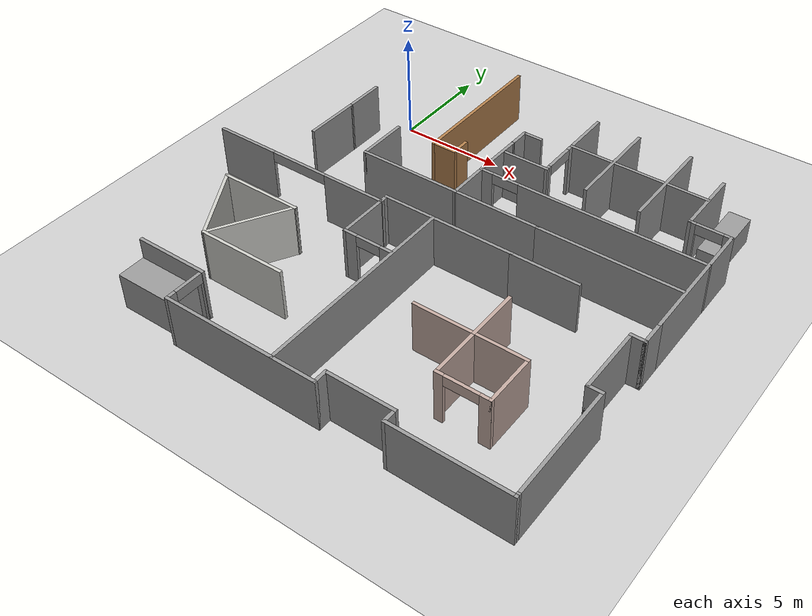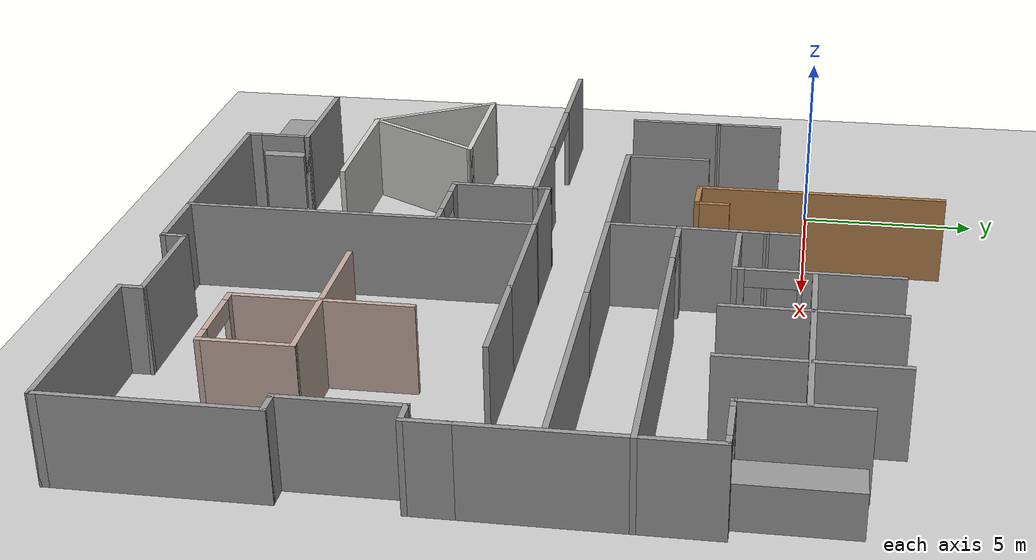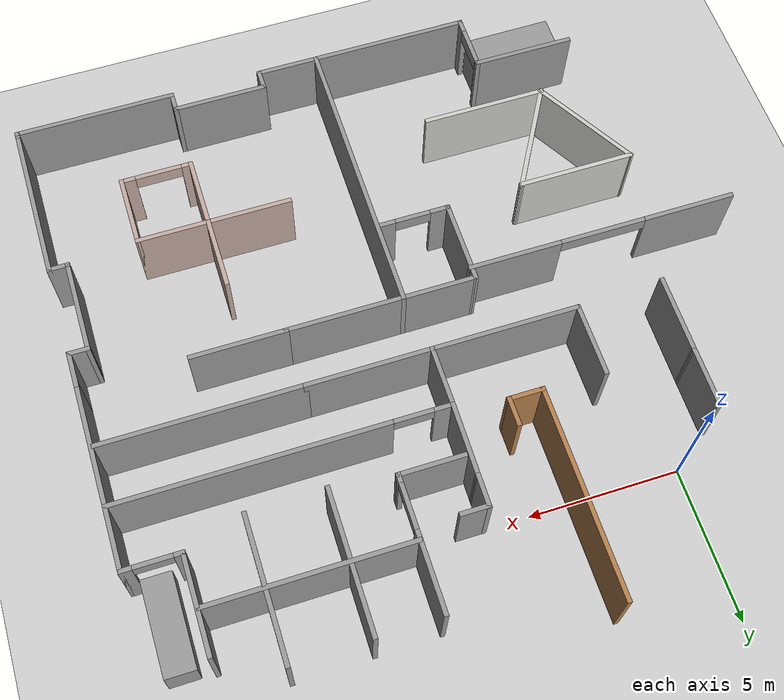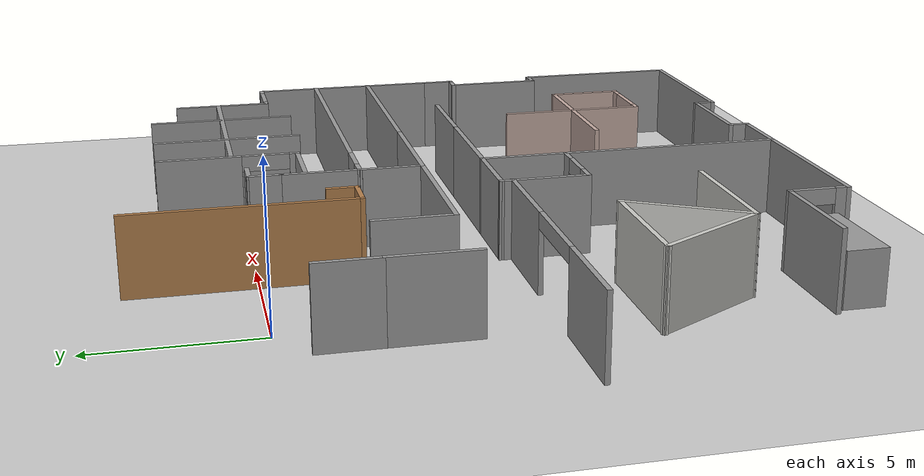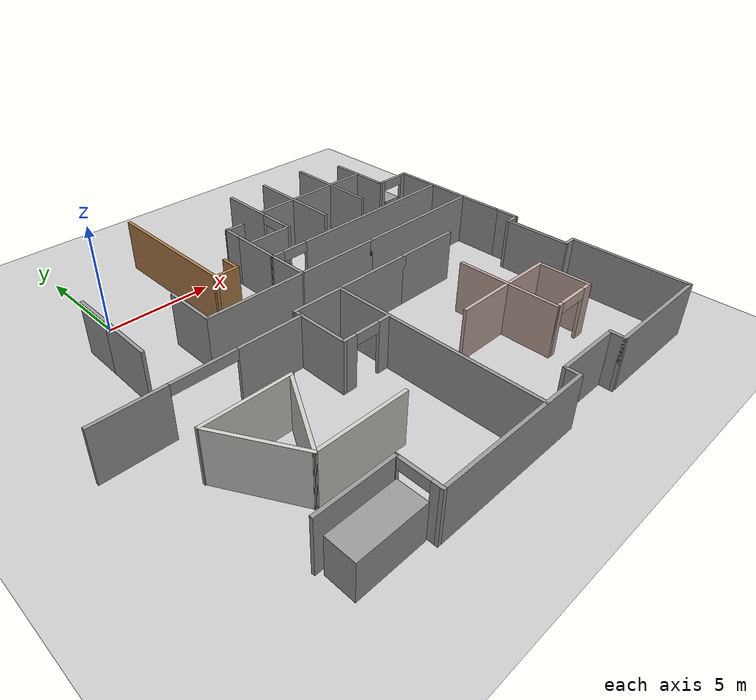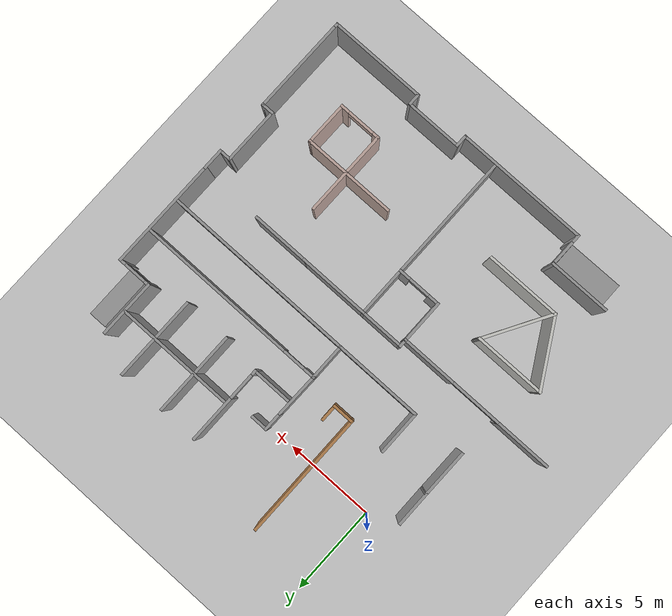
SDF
<sdf version="1.6">
 <world name="default">
  <model name="ground_plane">
   <static>1</static>
   <link name="link">
    <collision name="collision">
     <geometry><plane><normal>0 0 1</normal><size>100 100</size></plane></geometry>
     <surface><friction><ode><mu>100</mu><mu2>50</mu2></ode></friction></surface>
    </collision>
    <visual name="visual">
     <cast_shadows>0</cast_shadows>
     <geometry><plane><normal>0 0 1</normal><size>100 100</size></plane></geometry>
     <material>
      <script><uri>file://media/materials/scripts/gazebo.material</uri><name>Gazebo/Grey</name></script>
     </material>
    </visual>
   </link>
  </model>
  <model name="shopping01">
   <pose>-0.21266 0.4735 0 0 -0 0</pose>
   <link name="Wall_178">
    <collision name="Wall_178_Collision">
     <geometry><box><size>2.5 0.15 2.5</size></box></geometry>
     <pose>0 0 1.25 0 -0 0</pose>
    </collision>
    <visual name="Wall_178_Visual">
     <pose>0 0 1.25 0 -0 0</pose>
     <geometry><box><size>2.5 0.15 2.5</size></box></geometry>
     <material>
      <script><uri>file://media/materials/scripts/gazebo.material</uri><name>Gazebo/Grey</name></script>
      <ambient>1 1 1 1</ambient>
     </material>
     <meta><layer>0</layer></meta>
    </visual>
    <pose>1.83663 -4.63262 0 0 -0 -1.5708</pose>
   </link>
   <link name="Wall_179">
    <collision name="Wall_179_Collision">
     <geometry><box><size>5 0.15 2.5</size></box></geometry>
     <pose>0 0 1.25 0 -0 0</pose>
    </collision>
    <visual name="Wall_179_Visual">
     <pose>0 0 1.25 0 -0 0</pose>
     <geometry><box><size>5 0.15 2.5</size></box></geometry>
     <material>
      <script><uri>file://media/materials/scripts/gazebo.material</uri><name>Gazebo/Grey</name></script>
      <ambient>1 1 1 1</ambient>
     </material>
     <meta><layer>0</layer></meta>
    </visual>
    <pose>4.26163 -5.80762 0 0 -0 0</pose>
   </link>
   <link name="Wall_181">
    <collision name="Wall_181_Collision">
     <geometry><box><size>2.10458 0.15 2.5</size></box></geometry>
     <pose>0 0 1.25 0 -0 0</pose>
    </collision>
    <visual name="Wall_181_Visual">
     <pose>0 0 1.25 0 -0 0</pose>
     <geometry><box><size>2.10458 0.15 2.5</size></box></geometry>
     <material>
      <script><uri>file://media/materials/scripts/gazebo.material</uri><name>Gazebo/Grey</name></script>
      <ambient>1 1 1 1</ambient>
     </material>
     <meta><layer>0</layer></meta>
    </visual>
    <pose>6.68492 -4.83033 0 0 -0 1.57254</pose>
   </link>
   <link name="Wall_182">
    <pose>12.0817 -3.85304 0 0 -0 0</pose>
    <visual name="Wall_182_Visual_0">
     <pose>-5.1322 0 1.25 0 -0 0</pose>
     <geometry><box><size>0.682604 0.15 2.5</size></box></geometry>
     <material>
      <script><uri>file://media/materials/scripts/gazebo.material</uri><name>Gazebo/Grey</name></script>
      <ambient>1 1 1 1</ambient>
     </material>
     <meta><layer>0</layer></meta>
    </visual>
    <collision name="Wall_182_Collision_0">
     <geometry><box><size>0.682604 0.15 2.5</size></box></geometry>
     <pose>-5.1322 0 1.25 0 -0 0</pose>
    </collision>
    <visual name="Wall_182_Visual_1">
     <pose>0.990173 0 1.25 0 -0 0</pose>
     <geometry><box><size>8.96665 0.15 2.5</size></box></geometry>
     <material>
      <script><uri>file://media/materials/scripts/gazebo.material</uri><name>Gazebo/Grey</name></script>
      <ambient>1 1 1 1</ambient>
     </material>
     <meta><layer>0</layer></meta>
    </visual>
    <collision name="Wall_182_Collision_1">
     <geometry><box><size>8.96665 0.15 2.5</size></box></geometry>
     <pose>0.990173 0 1.25 0 -0 0</pose>
    </collision>
    <visual name="Wall_182_Visual_2">
     <pose>-4.14203 0 2.25 0 -0 0</pose>
     <geometry><box><size>1.29774 0.15 0.5</size></box></geometry>
     <material>
      <script><uri>file://media/materials/scripts/gazebo.material</uri><name>Gazebo/Grey</name></script>
      <ambient>1 1 1 1</ambient>
     </material>
     <meta><layer>0</layer></meta>
    </visual>
    <collision name="Wall_182_Collision_2">
     <geometry><box><size>1.29774 0.15 0.5</size></box></geometry>
     <pose>-4.14203 0 2.25 0 -0 0</pose>
    </collision>
   </link>
   <link name="Wall_186">
    <pose>8.96922 -0.029045 0 0 -0 -1.5708</pose>
    <visual name="Wall_186_Visual_0">
     <pose>-0.915651 0 1.25 0 -0 0</pose>
     <geometry><box><size>2.6687 0.15 2.5</size></box></geometry>
     <material>
      <script><uri>file://media/materials/scripts/gazebo.material</uri><name>Gazebo/Grey</name></script>
      <ambient>1 1 1 1</ambient>
     </material>
     <meta><layer>0</layer></meta>
    </visual>
    <collision name="Wall_186_Collision_0">
     <geometry><box><size>2.6687 0.15 2.5</size></box></geometry>
     <pose>-0.915651 0 1.25 0 -0 0</pose>
    </collision>
    <visual name="Wall_186_Visual_1">
     <pose>2.0851 0 1.25 0 -0 0</pose>
     <geometry><box><size>0.329802 0.15 2.5</size></box></geometry>
     <material>
      <script><uri>file://media/materials/scripts/gazebo.material</uri><name>Gazebo/Grey</name></script>
      <ambient>1 1 1 1</ambient>
     </material>
     <meta><layer>0</layer></meta>
    </visual>
    <collision name="Wall_186_Collision_1">
     <geometry><box><size>0.329802 0.15 2.5</size></box></geometry>
     <pose>2.0851 0 1.25 0 -0 0</pose>
    </collision>
    <visual name="Wall_186_Visual_2">
     <pose>1.16945 0 2.25 0 -0 0</pose>
     <geometry><box><size>1.5015 0.15 0.5</size></box></geometry>
     <material>
      <script><uri>file://media/materials/scripts/gazebo.material</uri><name>Gazebo/Grey</name></script>
      <ambient>1 1 1 1</ambient>
     </material>
     <meta><layer>0</layer></meta>
    </visual>
    <collision name="Wall_186_Collision_2">
     <geometry><box><size>1.5015 0.15 0.5</size></box></geometry>
     <pose>1.16945 0 2.25 0 -0 0</pose>
    </collision>
   </link>
   <link name="Wall_187">
    <collision name="Wall_187_Collision">
     <geometry><box><size>2.25 0.15 2.5</size></box></geometry>
     <pose>0 0 1.25 0 -0 0</pose>
    </collision>
    <visual name="Wall_187_Visual">
     <pose>0 0 1.25 0 -0 0</pose>
     <geometry><box><size>2.25 0.15 2.5</size></box></geometry>
     <material>
      <script><uri>file://media/materials/scripts/gazebo.material</uri><name>Gazebo/Grey</name></script>
      <ambient>1 1 1 1</ambient>
     </material>
     <meta><layer>0</layer></meta>
    </visual>
    <pose>7.91922 -2.20404 0 0 -0 3.14159</pose>
   </link>
   <link name="Wall_190">
    <collision name="Wall_190_Collision">
     <geometry><box><size>2.52682 0.15 2.5</size></box></geometry>
     <pose>0 0 1.25 0 -0 0</pose>
    </collision>
    <visual name="Wall_190_Visual">
     <pose>0 0 1.25 0 -0 0</pose>
     <geometry><box><size>2.52682 0.15 2.5</size></box></geometry>
     <material>
      <script><uri>file://media/materials/scripts/gazebo.material</uri><name>Gazebo/Grey</name></script>
      <ambient>1 1 1 1</ambient>
     </material>
     <meta><layer>0</layer></meta>
    </visual>
    <pose>6.69807 -2.66458 0 0 -0 1.5583</pose>
   </link>
   <link name="Wall_191">
    <collision name="Wall_191_Collision">
     <geometry><box><size>1.13785 0.15 2.5</size></box></geometry>
     <pose>0 0 1.25 0 -0 0</pose>
    </collision>
    <visual name="Wall_191_Visual">
     <pose>0 0 1.25 0 -0 0</pose>
     <geometry><box><size>1.13785 0.15 2.5</size></box></geometry>
     <material>
      <script><uri>file://media/materials/scripts/gazebo.material</uri><name>Gazebo/Grey</name></script>
      <ambient>1 1 1 1</ambient>
     </material>
     <meta><layer>0</layer></meta>
    </visual>
    <pose>6.7179 -0.982221 0 0 -0 1.56073</pose>
   </link>
   <link name="Wall_193">
    <collision name="Wall_193_Collision">
     <geometry><box><size>6.75 0.15 2.5</size></box></geometry>
     <pose>0 0 1.25 0 -0 0</pose>
    </collision>
    <visual name="Wall_193_Visual">
     <pose>0 0 1.25 0 -0 0</pose>
     <geometry><box><size>6.75 0.15 2.5</size></box></geometry>
     <material>
      <script><uri>file://media/materials/scripts/gazebo.material</uri><name>Gazebo/Grey</name></script>
      <ambient>1 1 1 1</ambient>
     </material>
     <meta><layer>0</layer></meta>
    </visual>
    <pose>12.2861 -0.121711 0 0 -0 0</pose>
   </link>
   <link name="Wall_195">
    <collision name="Wall_195_Collision">
     <geometry><box><size>1 0.15 2.5</size></box></geometry>
     <pose>0 0 1.25 0 -0 0</pose>
    </collision>
    <visual name="Wall_195_Visual">
     <pose>0 0 1.25 0 -0 0</pose>
     <geometry><box><size>1 0.15 2.5</size></box></geometry>
     <material>
      <script><uri>file://media/materials/scripts/gazebo.material</uri><name>Gazebo/Grey</name></script>
      <ambient>1 1 1 1</ambient>
     </material>
     <meta><layer>0</layer></meta>
    </visual>
    <pose>7.14787 -0.498266 0 0 -0 0</pose>
   </link>
   <link name="Wall_201">
    <collision name="Wall_201_Collision">
     <geometry><box><size>1 0.15 2.5</size></box></geometry>
     <pose>0 0 1.25 0 -0 0</pose>
    </collision>
    <visual name="Wall_201_Visual">
     <pose>0 0 1.25 0 -0 0</pose>
     <geometry><box><size>1 0.15 2.5</size></box></geometry>
     <material>
      <script><uri>file://media/materials/scripts/gazebo.material</uri><name>Gazebo/Wood</name></script>
      <ambient>1 1 1 1</ambient>
     </material>
     <meta><layer>0</layer></meta>
    </visual>
    <pose>4.98723 -3.08397 0 0 -0 -1.5708</pose>
   </link>
   <link name="Wall_202">
    <collision name="Wall_202_Collision">
     <geometry><box><size>1.25 0.15 2.5</size></box></geometry>
     <pose>0 0 1.25 0 -0 0</pose>
    </collision>
    <visual name="Wall_202_Visual">
     <pose>0 0 1.25 0 -0 0</pose>
     <geometry><box><size>1.25 0.15 2.5</size></box></geometry>
     <material>
      <script><uri>file://media/materials/scripts/gazebo.material</uri><name>Gazebo/Wood</name></script>
      <ambient>1 1 1 1</ambient>
     </material>
     <meta><layer>0</layer></meta>
    </visual>
    <pose>4.43723 -3.50897 0 0 -0 3.14159</pose>
   </link>
   <link name="Wall_203">
    <collision name="Wall_203_Collision">
     <geometry><box><size>7 0.15 2.5</size></box></geometry>
     <pose>0 0 1.25 0 -0 0</pose>
    </collision>
    <visual name="Wall_203_Visual">
     <pose>0 0 1.25 0 -0 0</pose>
     <geometry><box><size>7 0.15 2.5</size></box></geometry>
     <material>
      <script><uri>file://media/materials/scripts/gazebo.material</uri><name>Gazebo/Wood</name></script>
      <ambient>1 1 1 1</ambient>
     </material>
     <meta><layer>0</layer></meta>
    </visual>
    <pose>3.88723 -0.083971 0 0 -0 1.5708</pose>
   </link>
   <link name="Wall_225">
    <collision name="Wall_225_Collision">
     <geometry><box><size>4.75 0.15 2.5</size></box></geometry>
     <pose>0 0 1.25 0 -0 0</pose>
    </collision>
    <visual name="Wall_225_Visual">
     <pose>0 0 1.25 0 -0 0</pose>
     <geometry><box><size>4.75 0.15 2.5</size></box></geometry>
     <material>
      <script><uri>file://media/materials/scripts/gazebo.material</uri><name>Gazebo/Grey</name></script>
      <ambient>1 1 1 1</ambient>
     </material>
     <meta><layer>0</layer></meta>
    </visual>
    <pose>11.0792 -0.143171 0 0 -0 -1.5708</pose>
   </link>
   <link name="Wall_227">
    <collision name="Wall_227_Collision">
     <geometry><box><size>4.75 0.15 2.5</size></box></geometry>
     <pose>0 0 1.25 0 -0 0</pose>
    </collision>
    <visual name="Wall_227_Visual">
     <pose>0 0 1.25 0 -0 0</pose>
     <geometry><box><size>4.75 0.15 2.5</size></box></geometry>
     <material>
      <script><uri>file://media/materials/scripts/gazebo.material</uri><name>Gazebo/Grey</name></script>
      <ambient>1 1 1 1</ambient>
     </material>
     <meta><layer>0</layer></meta>
    </visual>
    <pose>13.6343 -0.112754 0 0 -0 -1.5708</pose>
   </link>
   <link name="Wall_23">
    <collision name="Wall_23_Collision">
     <geometry><box><size>3.25 0.15 2.5</size></box></geometry>
     <pose>0 0 1.25 0 -0 0</pose>
    </collision>
    <visual name="Wall_23_Visual">
     <pose>0 0 1.25 0 -0 0</pose>
     <geometry><box><size>3.25 0.15 2.5</size></box></geometry>
     <material>
      <script><uri>file://media/materials/scripts/gazebo.material</uri><name>Gazebo/Grey</name></script>
      <ambient>1 1 1 1</ambient>
     </material>
     <meta><layer>0</layer></meta>
    </visual>
    <pose>15.6297 -0.270013 0 0 -0 -1.5708</pose>
   </link>
   <link name="Wall_24">
    <pose>16.5547 -1.82001 0 0 -0 0</pose>
    <visual name="Wall_24_Visual_0">
     <pose>-0.824092 0 1.25 0 -0 0</pose>
     <geometry><box><size>0.351815 0.15 2.5</size></box></geometry>
     <material>
      <script><uri>file://media/materials/scripts/gazebo.material</uri><name>Gazebo/Grey</name></script>
      <ambient>1 1 1 1</ambient>
     </material>
     <meta><layer>0</layer></meta>
    </visual>
    <collision name="Wall_24_Collision_0">
     <geometry><box><size>0.351815 0.15 2.5</size></box></geometry>
     <pose>-0.824092 0 1.25 0 -0 0</pose>
    </collision>
    <visual name="Wall_24_Visual_1">
     <pose>0.7921 0 1.25 0 -0 0</pose>
     <geometry><box><size>0.415799 0.15 2.5</size></box></geometry>
     <material>
      <script><uri>file://media/materials/scripts/gazebo.material</uri><name>Gazebo/Grey</name></script>
      <ambient>1 1 1 1</ambient>
     </material>
     <meta><layer>0</layer></meta>
    </visual>
    <collision name="Wall_24_Collision_1">
     <geometry><box><size>0.415799 0.15 2.5</size></box></geometry>
     <pose>0.7921 0 1.25 0 -0 0</pose>
    </collision>
    <visual name="Wall_24_Visual_2">
     <pose>-0.031992 0 2.25 0 -0 0</pose>
     <geometry><box><size>1.23239 0.15 0.5</size></box></geometry>
     <material>
      <script><uri>file://media/materials/scripts/gazebo.material</uri><name>Gazebo/Grey</name></script>
      <ambient>1 1 1 1</ambient>
     </material>
     <meta><layer>0</layer></meta>
    </visual>
    <collision name="Wall_24_Collision_2">
     <geometry><box><size>1.23239 0.15 0.5</size></box></geometry>
     <pose>-0.031992 0 2.25 0 -0 0</pose>
    </collision>
   </link>
   <link name="Wall_25">
    <collision name="Wall_25_Collision">
     <geometry><box><size>6.25 0.15 2.5</size></box></geometry>
     <pose>0 0 1.25 0 -0 0</pose>
    </collision>
    <visual name="Wall_25_Visual">
     <pose>0 0 1.25 0 -0 0</pose>
     <geometry><box><size>6.25 0.15 2.5</size></box></geometry>
     <material>
      <script><uri>file://media/materials/scripts/gazebo.material</uri><name>Gazebo/Grey</name></script>
      <ambient>1 1 1 1</ambient>
     </material>
     <meta><layer>0</layer></meta>
    </visual>
    <pose>17.4797 -4.87001 0 0 -0 -1.5708</pose>
   </link>
   <link name="Wall_27">
    <collision name="Wall_27_Collision">
     <geometry><box><size>1.25 0.15 2.5</size></box></geometry>
     <pose>0 0 1.25 0 -0 0</pose>
    </collision>
    <visual name="Wall_27_Visual">
     <pose>0 0 1.25 0 -0 0</pose>
     <geometry><box><size>1.25 0.15 2.5</size></box></geometry>
     <material>
      <script><uri>file://media/materials/scripts/gazebo.material</uri><name>Gazebo/Grey</name></script>
      <ambient>1 1 1 1</ambient>
     </material>
     <meta><layer>0</layer></meta>
    </visual>
    <pose>17.4797 -8.47001 0 0 -0 -1.5708</pose>
   </link>
   <link name="Wall_274">
    <pose>0.062839 -8.15723 0 0 -0 0</pose>
    <visual name="Wall_274_Visual_0">
     <pose>-3.0408 0 1.25 0 -0 0</pose>
     <geometry><box><size>3.12774 0.15 2.5</size></box></geometry>
     <material>
      <script><uri>file://media/materials/scripts/gazebo.material</uri><name>Gazebo/Grey</name></script>
      <ambient>1 1 1 1</ambient>
     </material>
     <meta><layer>0</layer></meta>
    </visual>
    <collision name="Wall_274_Collision_0">
     <geometry><box><size>3.12774 0.15 2.5</size></box></geometry>
     <pose>-3.0408 0 1.25 0 -0 0</pose>
    </collision>
    <visual name="Wall_274_Visual_1">
     <pose>3.01669 0 1.25 0 -0 0</pose>
     <geometry><box><size>3.17595 0.15 2.5</size></box></geometry>
     <material>
      <script><uri>file://media/materials/scripts/gazebo.material</uri><name>Gazebo/Grey</name></script>
      <ambient>1 1 1 1</ambient>
     </material>
     <meta><layer>0</layer></meta>
    </visual>
    <collision name="Wall_274_Collision_1">
     <geometry><box><size>3.17595 0.15 2.5</size></box></geometry>
     <pose>3.01669 0 1.25 0 -0 0</pose>
    </collision>
    <visual name="Wall_274_Visual_2">
     <pose>-0.024104 0 2.25 0 -0 0</pose>
     <geometry><box><size>2.90564 0.15 0.5</size></box></geometry>
     <material>
      <script><uri>file://media/materials/scripts/gazebo.material</uri><name>Gazebo/Grey</name></script>
      <ambient>1 1 1 1</ambient>
     </material>
     <meta><layer>0</layer></meta>
    </visual>
    <collision name="Wall_274_Collision_2">
     <geometry><box><size>2.90564 0.15 0.5</size></box></geometry>
     <pose>-0.024104 0 2.25 0 -0 0</pose>
    </collision>
   </link>
   <link name="Wall_277">
    <collision name="Wall_277_Collision">
     <geometry><box><size>9.936 0.15 2.5</size></box></geometry>
     <pose>0 0 1.25 0 -0 0</pose>
    </collision>
    <visual name="Wall_277_Visual">
     <pose>0 0 1.25 0 -0 0</pose>
     <geometry><box><size>9.936 0.15 2.5</size></box></geometry>
     <material>
      <script><uri>file://media/materials/scripts/gazebo.material</uri><name>Gazebo/Grey</name></script>
      <ambient>1 1 1 1</ambient>
     </material>
     <meta><layer>0</layer></meta>
    </visual>
    <pose>6.98322 -12.674 0 0 -0 -1.5708</pose>
   </link>
   <link name="Wall_279">
    <collision name="Wall_279_Collision">
     <geometry><box><size>2.5 0.15 2.5</size></box></geometry>
     <pose>0 0 1.25 0 -0 0</pose>
    </collision>
    <visual name="Wall_279_Visual">
     <pose>0 0 1.25 0 -0 0</pose>
     <geometry><box><size>2.5 0.15 2.5</size></box></geometry>
     <material>
      <script><uri>file://media/materials/scripts/gazebo.material</uri><name>Gazebo/Grey</name></script>
      <ambient>1 1 1 1</ambient>
     </material>
     <meta><layer>0</layer></meta>
    </visual>
    <pose>4.5626 -9.33223 0 0 -0 -1.5708</pose>
   </link>
   <link name="Wall_28">
    <collision name="Wall_28_Collision">
     <geometry><box><size>0.75 0.15 2.5</size></box></geometry>
     <pose>0 0 1.25 0 -0 0</pose>
    </collision>
    <visual name="Wall_28_Visual">
     <pose>0 0 1.25 0 -0 0</pose>
     <geometry><box><size>0.75 0.15 2.5</size></box></geometry>
     <material>
      <script><uri>file://media/materials/scripts/gazebo.material</uri><name>Gazebo/Grey</name></script>
      <ambient>1 1 1 1</ambient>
     </material>
     <meta><layer>0</layer></meta>
    </visual>
    <pose>17.1797 -9.02001 0 0 -0 3.14159</pose>
   </link>
   <link name="Wall_280">
    <pose>5.78784 -10.5072 0 0 -0 0</pose>
    <visual name="Wall_280_Visual_0">
     <pose>-0.940066 0 1.25 0 -0 0</pose>
     <geometry><box><size>0.660532 0.15 2.5</size></box></geometry>
     <material>
      <script><uri>file://media/materials/scripts/gazebo.material</uri><name>Gazebo/Grey</name></script>
      <ambient>1 1 1 1</ambient>
     </material>
     <meta><layer>0</layer></meta>
    </visual>
    <collision name="Wall_280_Collision_0">
     <geometry><box><size>0.660532 0.15 2.5</size></box></geometry>
     <pose>-0.940066 0 1.25 0 -0 0</pose>
    </collision>
    <visual name="Wall_280_Visual_1">
     <pose>0.926906 0 1.25 0 -0 0</pose>
     <geometry><box><size>0.686851 0.15 2.5</size></box></geometry>
     <material>
      <script><uri>file://media/materials/scripts/gazebo.material</uri><name>Gazebo/Grey</name></script>
      <ambient>1 1 1 1</ambient>
     </material>
     <meta><layer>0</layer></meta>
    </visual>
    <collision name="Wall_280_Collision_1">
     <geometry><box><size>0.686851 0.15 2.5</size></box></geometry>
     <pose>0.926906 0 1.25 0 -0 0</pose>
    </collision>
    <visual name="Wall_280_Visual_2">
     <pose>-0.01316 0 2.25 0 -0 0</pose>
     <geometry><box><size>1.19328 0.15 0.5</size></box></geometry>
     <material>
      <script><uri>file://media/materials/scripts/gazebo.material</uri><name>Gazebo/Grey</name></script>
      <ambient>1 1 1 1</ambient>
     </material>
     <meta><layer>0</layer></meta>
    </visual>
    <collision name="Wall_280_Collision_2">
     <geometry><box><size>1.19328 0.15 0.5</size></box></geometry>
     <pose>-0.01316 0 2.25 0 -0 0</pose>
    </collision>
   </link>
   <link name="Wall_282">
    <collision name="Wall_282_Collision">
     <geometry><box><size>0.526186 0.15 2.5</size></box></geometry>
     <pose>0 0 1.25 0 -0 0</pose>
    </collision>
    <visual name="Wall_282_Visual">
     <pose>0 0 1.25 0 -0 0</pose>
     <geometry><box><size>0.526186 0.15 2.5</size></box></geometry>
     <material>
      <script><uri>file://media/materials/scripts/gazebo.material</uri><name>Gazebo/Grey</name></script>
      <ambient>1 1 1 1</ambient>
     </material>
     <meta><layer>0</layer></meta>
    </visual>
    <pose>4.56241 -7.96914 0 0 -0 1.57182</pose>
   </link>
   <link name="Wall_283">
    <collision name="Wall_283_Collision">
     <geometry><box><size>2.571 0.15 2.5</size></box></geometry>
     <pose>0 0 1.25 0 -0 0</pose>
    </collision>
    <visual name="Wall_283_Visual">
     <pose>0 0 1.25 0 -0 0</pose>
     <geometry><box><size>2.571 0.15 2.5</size></box></geometry>
     <material>
      <script><uri>file://media/materials/scripts/gazebo.material</uri><name>Gazebo/Grey</name></script>
      <ambient>1 1 1 1</ambient>
     </material>
     <meta><layer>0</layer></meta>
    </visual>
    <pose>5.77272 -7.78104 0 0 -0 0</pose>
   </link>
   <link name="Wall_286">
    <collision name="Wall_286_Collision">
     <geometry><box><size>4 0.15 2.5</size></box></geometry>
     <pose>0 0 1.25 0 -0 0</pose>
    </collision>
    <visual name="Wall_286_Visual">
     <pose>0 0 1.25 0 -0 0</pose>
     <geometry><box><size>4 0.15 2.5</size></box></geometry>
     <material>
      <script><uri>file://media/materials/scripts/gazebo.material</uri><name>Gazebo/CeilingTiled</name></script>
      <ambient>1 1 1 1</ambient>
     </material>
     <meta><layer>0</layer></meta>
    </visual>
    <pose>0.00975 -10.6072 0 0 -0 0</pose>
   </link>
   <link name="Wall_288">
    <collision name="Wall_288_Collision">
     <geometry><box><size>4 0.15 2.5</size></box></geometry>
     <pose>0 0 1.25 0 -0 0</pose>
    </collision>
    <visual name="Wall_288_Visual">
     <pose>0 0 1.25 0 -0 0</pose>
     <geometry><box><size>4 0.15 2.5</size></box></geometry>
     <material>
      <script><uri>file://media/materials/scripts/gazebo.material</uri><name>Gazebo/CeilingTiled</name></script>
      <ambient>1 1 1 1</ambient>
     </material>
     <meta><layer>0</layer></meta>
    </visual>
    <pose>-0.95275 -12.2743 0 0 -0 -1.0472</pose>
   </link>
   <link name="Wall_289">
    <collision name="Wall_289_Collision">
     <geometry><box><size>4 0.15 2.5</size></box></geometry>
     <pose>0 0 1.25 0 -0 0</pose>
    </collision>
    <visual name="Wall_289_Visual">
     <pose>0 0 1.25 0 -0 0</pose>
     <geometry><box><size>4 0.15 2.5</size></box></geometry>
     <material>
      <script><uri>file://media/materials/scripts/gazebo.material</uri><name>Gazebo/CeilingTiled</name></script>
      <ambient>1 1 1 1</ambient>
     </material>
     <meta><layer>0</layer></meta>
    </visual>
    <pose>0.97225 -12.2743 0 0 -0 1.0472</pose>
   </link>
   <link name="Wall_29">
    <collision name="Wall_29_Collision">
     <geometry><box><size>3.25 0.15 2.5</size></box></geometry>
     <pose>0 0 1.25 0 -0 0</pose>
    </collision>
    <visual name="Wall_29_Visual">
     <pose>0 0 1.25 0 -0 0</pose>
     <geometry><box><size>3.25 0.15 2.5</size></box></geometry>
     <material>
      <script><uri>file://media/materials/scripts/gazebo.material</uri><name>Gazebo/Grey</name></script>
      <ambient>1 1 1 1</ambient>
     </material>
     <meta><layer>0</layer></meta>
    </visual>
    <pose>16.8797 -10.57 0 0 -0 -1.5708</pose>
   </link>
   <link name="Wall_294">
    <collision name="Wall_294_Collision">
     <geometry><box><size>4.25 0.15 2.5</size></box></geometry>
     <pose>0 0 1.25 0 -0 0</pose>
    </collision>
    <visual name="Wall_294_Visual">
     <pose>0 0 1.25 0 -0 0</pose>
     <geometry><box><size>4.25 0.15 2.5</size></box></geometry>
     <material>
      <script><uri>file://media/materials/scripts/gazebo.material</uri><name>Gazebo/CeilingTiled</name></script>
      <ambient>1 1 1 1</ambient>
     </material>
     <meta><layer>0</layer></meta>
    </visual>
    <pose>2.05975 -13.9414 0 0 -0 0</pose>
   </link>
   <link name="Wall_30">
    <collision name="Wall_30_Collision">
     <geometry><box><size>0.75 0.15 2.5</size></box></geometry>
     <pose>0 0 1.25 0 -0 0</pose>
    </collision>
    <visual name="Wall_30_Visual">
     <pose>0 0 1.25 0 -0 0</pose>
     <geometry><box><size>0.75 0.15 2.5</size></box></geometry>
     <material>
      <script><uri>file://media/materials/scripts/gazebo.material</uri><name>Gazebo/Grey</name></script>
      <ambient>1 1 1 1</ambient>
     </material>
     <meta><layer>0</layer></meta>
    </visual>
    <pose>17.1797 -12.12 0 0 -0 0</pose>
   </link>
   <link name="Wall_302">
    <collision name="Wall_302_Collision">
     <geometry><box><size>4.25 0.15 2.5</size></box></geometry>
     <pose>0 0 1.25 0 -0 0</pose>
    </collision>
    <visual name="Wall_302_Visual">
     <pose>0 0 1.25 0 -0 0</pose>
     <geometry><box><size>4.25 0.15 2.5</size></box></geometry>
     <material>
      <script><uri>file://media/materials/scripts/gazebo.material</uri><name>Gazebo/Grey</name></script>
      <ambient>1 1 1 1</ambient>
     </material>
     <meta><layer>0</layer></meta>
    </visual>
    <pose>8.73663 -5.80762 0 0 -0 0</pose>
   </link>
   <link name="Wall_31">
    <collision name="Wall_31_Collision">
     <geometry><box><size>5.5 0.15 2.5</size></box></geometry>
     <pose>0 0 1.25 0 -0 0</pose>
    </collision>
    <visual name="Wall_31_Visual">
     <pose>0 0 1.25 0 -0 0</pose>
     <geometry><box><size>5.5 0.15 2.5</size></box></geometry>
     <material>
      <script><uri>file://media/materials/scripts/gazebo.material</uri><name>Gazebo/Grey</name></script>
      <ambient>1 1 1 1</ambient>
     </material>
     <meta><layer>0</layer></meta>
    </visual>
    <pose>17.4797 -14.795 0 0 -0 -1.5708</pose>
   </link>
   <link name="Wall_311">
    <collision name="Wall_311_Collision">
     <geometry><box><size>5.25 0.15 2.5</size></box></geometry>
     <pose>0 0 1.25 0 -0 0</pose>
    </collision>
    <visual name="Wall_311_Visual">
     <pose>0 0 1.25 0 -0 0</pose>
     <geometry><box><size>5.25 0.15 2.5</size></box></geometry>
     <material>
      <script><uri>file://media/materials/scripts/gazebo.material</uri><name>Gazebo/Grey</name></script>
      <ambient>0.760784 0.662745 0.627451 1</ambient>
     </material>
     <meta><layer>0</layer></meta>
    </visual>
    <pose>11.9901 -12.3178 0 0 -0 0</pose>
   </link>
   <link name="Wall_313">
    <collision name="Wall_313_Collision">
     <geometry><box><size>2.5 0.15 2.5</size></box></geometry>
     <pose>0 0 1.25 0 -0 0</pose>
    </collision>
    <visual name="Wall_313_Visual">
     <pose>0 0 1.25 0 -0 0</pose>
     <geometry><box><size>2.5 0.15 2.5</size></box></geometry>
     <material>
      <script><uri>file://media/materials/scripts/gazebo.material</uri><name>Gazebo/Grey</name></script>
      <ambient>0.760784 0.662745 0.627451 1</ambient>
     </material>
     <meta><layer>0</layer></meta>
    </visual>
    <pose>12.1824 -11.1428 0 0 -0 1.5708</pose>
   </link>
   <link name="Wall_315">
    <collision name="Wall_315_Collision">
     <geometry><box><size>2.5 0.15 2.5</size></box></geometry>
     <pose>0 0 1.25 0 -0 0</pose>
    </collision>
    <visual name="Wall_315_Visual">
     <pose>0 0 1.25 0 -0 0</pose>
     <geometry><box><size>2.5 0.15 2.5</size></box></geometry>
     <material>
      <script><uri>file://media/materials/scripts/gazebo.material</uri><name>Gazebo/Grey</name></script>
      <ambient>0.760784 0.662745 0.627451 1</ambient>
     </material>
     <meta><layer>0</layer></meta>
    </visual>
    <pose>12.1824 -13.4928 0 0 -0 -1.5708</pose>
   </link>
   <link name="Wall_317">
    <collision name="Wall_317_Collision">
     <geometry><box><size>4 0.15 2.5</size></box></geometry>
     <pose>0 0 1.25 0 -0 0</pose>
    </collision>
    <visual name="Wall_317_Visual">
     <pose>0 0 1.25 0 -0 0</pose>
     <geometry><box><size>4 0.15 2.5</size></box></geometry>
     <material>
      <script><uri>file://media/materials/scripts/gazebo.material</uri><name>Gazebo/Grey</name></script>
      <ambient>1 1 1 1</ambient>
     </material>
     <meta><layer>0</layer></meta>
    </visual>
    <pose>8.90822 -7.78104 0 0 -0 0</pose>
   </link>
   <link name="Wall_321">
    <collision name="Wall_321_Collision">
     <geometry><box><size>6.75 0.15 2.5</size></box></geometry>
     <pose>0 0 1.25 0 -0 0</pose>
    </collision>
    <visual name="Wall_321_Visual">
     <pose>0 0 1.25 0 -0 0</pose>
     <geometry><box><size>6.75 0.15 2.5</size></box></geometry>
     <material>
      <script><uri>file://media/materials/scripts/gazebo.material</uri><name>Gazebo/Grey</name></script>
      <ambient>1 1 1 1</ambient>
     </material>
     <meta><layer>0</layer></meta>
    </visual>
    <pose>14.0866 -5.80762 0 0 -0 0</pose>
   </link>
   <link name="Wall_323">
    <collision name="Wall_323_Collision">
     <geometry><box><size>3.25 0.15 2.5</size></box></geometry>
     <pose>0 0 1.25 0 -0 0</pose>
    </collision>
    <visual name="Wall_323_Visual">
     <pose>0 0 1.25 0 -0 0</pose>
     <geometry><box><size>3.25 0.15 2.5</size></box></geometry>
     <material>
      <script><uri>file://media/materials/scripts/gazebo.material</uri><name>Gazebo/Grey</name></script>
      <ambient>1 1 1 1</ambient>
     </material>
     <meta><layer>0</layer></meta>
    </visual>
    <pose>12.3832 -7.78104 0 0 -0 0</pose>
   </link>
   <link name="Wall_325">
    <collision name="Wall_325_Collision">
     <geometry><box><size>2.5 0.15 2.5</size></box></geometry>
     <pose>0 0 1.25 0 -0 0</pose>
    </collision>
    <visual name="Wall_325_Visual">
     <pose>0 0 1.25 0 -0 0</pose>
     <geometry><box><size>2.5 0.15 2.5</size></box></geometry>
     <material>
      <script><uri>file://media/materials/scripts/gazebo.material</uri><name>Gazebo/Grey</name></script>
      <ambient>0.760784 0.662745 0.627451 1</ambient>
     </material>
     <meta><layer>0</layer></meta>
    </visual>
    <pose>14.5401 -13.4928 0 0 -0 -1.5708</pose>
   </link>
   <link name="Wall_327">
    <pose>13.3613 -14.6678 0 0 -0 0</pose>
    <visual name="Wall_327_Visual_0">
     <pose>-1.05253 0 1.25 0 -0 0</pose>
     <geometry><box><size>0.402653 0.15 2.5</size></box></geometry>
     <material>
      <script><uri>file://media/materials/scripts/gazebo.material</uri><name>Gazebo/Grey</name></script>
      <ambient>0.760784 0.662745 0.627451 1</ambient>
     </material>
     <meta><layer>0</layer></meta>
    </visual>
    <collision name="Wall_327_Collision_0">
     <geometry><box><size>0.402653 0.15 2.5</size></box></geometry>
     <pose>-1.05253 0 1.25 0 -0 0</pose>
    </collision>
    <visual name="Wall_327_Visual_1">
     <pose>0.983712 0 1.25 0 -0 0</pose>
     <geometry><box><size>0.540295 0.15 2.5</size></box></geometry>
     <material>
      <script><uri>file://media/materials/scripts/gazebo.material</uri><name>Gazebo/Grey</name></script>
      <ambient>0.760784 0.662745 0.627451 1</ambient>
     </material>
     <meta><layer>0</layer></meta>
    </visual>
    <collision name="Wall_327_Collision_1">
     <geometry><box><size>0.540295 0.15 2.5</size></box></geometry>
     <pose>0.983712 0 1.25 0 -0 0</pose>
    </collision>
    <visual name="Wall_327_Visual_2">
     <pose>-0.068821 0 2.25 0 -0 0</pose>
     <geometry><box><size>1.56477 0.15 0.5</size></box></geometry>
     <material>
      <script><uri>file://media/materials/scripts/gazebo.material</uri><name>Gazebo/Grey</name></script>
      <ambient>0.760784 0.662745 0.627451 1</ambient>
     </material>
     <meta><layer>0</layer></meta>
    </visual>
    <collision name="Wall_327_Collision_2">
     <geometry><box><size>1.56477 0.15 0.5</size></box></geometry>
     <pose>-0.068821 0 2.25 0 -0 0</pose>
    </collision>
   </link>
   <link name="Wall_33">
    <collision name="Wall_33_Collision">
     <geometry><box><size>0.25 0.15 2.5</size></box></geometry>
     <pose>0 0 1.25 0 -0 0</pose>
    </collision>
    <visual name="Wall_33_Visual">
     <pose>0 0 1.25 0 -0 0</pose>
     <geometry><box><size>0.25 0.15 2.5</size></box></geometry>
     <material>
      <script><uri>file://media/materials/scripts/gazebo.material</uri><name>Gazebo/Grey</name></script>
      <ambient>1 1 1 1</ambient>
     </material>
     <meta><layer>0</layer></meta>
    </visual>
    <pose>17.4797 -17.52 0 0 -0 -1.5708</pose>
   </link>
   <link name="Wall_34">
    <collision name="Wall_34_Collision">
     <geometry><box><size>5.5 0.15 2.5</size></box></geometry>
     <pose>0 0 1.25 0 -0 0</pose>
    </collision>
    <visual name="Wall_34_Visual">
     <pose>0 0 1.25 0 -0 0</pose>
     <geometry><box><size>5.5 0.15 2.5</size></box></geometry>
     <material>
      <script><uri>file://media/materials/scripts/gazebo.material</uri><name>Gazebo/Grey</name></script>
      <ambient>1 1 1 1</ambient>
     </material>
     <meta><layer>0</layer></meta>
    </visual>
    <pose>14.8047 -17.57 0 0 -0 3.14159</pose>
   </link>
   <link name="Wall_35">
    <collision name="Wall_35_Collision">
     <geometry><box><size>0.75 0.15 2.5</size></box></geometry>
     <pose>0 0 1.25 0 -0 0</pose>
    </collision>
    <visual name="Wall_35_Visual">
     <pose>0 0 1.25 0 -0 0</pose>
     <geometry><box><size>0.75 0.15 2.5</size></box></geometry>
     <material>
      <script><uri>file://media/materials/scripts/gazebo.material</uri><name>Gazebo/Grey</name></script>
      <ambient>1 1 1 1</ambient>
     </material>
     <meta><layer>0</layer></meta>
    </visual>
    <pose>12.1297 -17.27 0 0 -0 1.5708</pose>
   </link>
   <link name="Wall_36">
    <collision name="Wall_36_Collision">
     <geometry><box><size>3.25 0.15 2.5</size></box></geometry>
     <pose>0 0 1.25 0 -0 0</pose>
    </collision>
    <visual name="Wall_36_Visual">
     <pose>0 0 1.25 0 -0 0</pose>
     <geometry><box><size>3.25 0.15 2.5</size></box></geometry>
     <material>
      <script><uri>file://media/materials/scripts/gazebo.material</uri><name>Gazebo/Grey</name></script>
      <ambient>1 1 1 1</ambient>
     </material>
     <meta><layer>0</layer></meta>
    </visual>
    <pose>10.5797 -16.97 0 0 -0 3.14159</pose>
   </link>
   <link name="Wall_37">
    <collision name="Wall_37_Collision">
     <geometry><box><size>0.75 0.15 2.5</size></box></geometry>
     <pose>0 0 1.25 0 -0 0</pose>
    </collision>
    <visual name="Wall_37_Visual">
     <pose>0 0 1.25 0 -0 0</pose>
     <geometry><box><size>0.75 0.15 2.5</size></box></geometry>
     <material>
      <script><uri>file://media/materials/scripts/gazebo.material</uri><name>Gazebo/Grey</name></script>
      <ambient>1 1 1 1</ambient>
     </material>
     <meta><layer>0</layer></meta>
    </visual>
    <pose>9.02973 -17.27 0 0 -0 -1.5708</pose>
   </link>
   <link name="Wall_38">
    <collision name="Wall_38_Collision">
     <geometry><box><size>7.5 0.15 2.5</size></box></geometry>
     <pose>0 0 1.25 0 -0 0</pose>
    </collision>
    <visual name="Wall_38_Visual">
     <pose>0 0 1.25 0 -0 0</pose>
     <geometry><box><size>7.5 0.15 2.5</size></box></geometry>
     <material>
      <script><uri>file://media/materials/scripts/gazebo.material</uri><name>Gazebo/Grey</name></script>
      <ambient>1 1 1 1</ambient>
     </material>
     <meta><layer>0</layer></meta>
    </visual>
    <pose>5.35473 -17.57 0 0 -0 3.14159</pose>
   </link>
   <link name="Wall_39">
    <pose>1.67973 -16.645 0 0 -0 1.5708</pose>
    <visual name="Wall_39_Visual_0">
     <pose>-0.752166 0 1.25 0 -0 0</pose>
     <geometry><box><size>0.495668 0.15 2.5</size></box></geometry>
     <material>
      <script><uri>file://media/materials/scripts/gazebo.material</uri><name>Gazebo/Grey</name></script>
      <ambient>1 1 1 1</ambient>
     </material>
     <meta><layer>0</layer></meta>
    </visual>
    <collision name="Wall_39_Collision_0">
     <geometry><box><size>0.495668 0.15 2.5</size></box></geometry>
     <pose>-0.752166 0 1.25 0 -0 0</pose>
    </collision>
    <visual name="Wall_39_Visual_1">
     <pose>0.914128 0 1.25 0 -0 0</pose>
     <geometry><box><size>0.171743 0.15 2.5</size></box></geometry>
     <material>
      <script><uri>file://media/materials/scripts/gazebo.material</uri><name>Gazebo/Grey</name></script>
      <ambient>1 1 1 1</ambient>
     </material>
     <meta><layer>0</layer></meta>
    </visual>
    <collision name="Wall_39_Collision_1">
     <geometry><box><size>0.171743 0.15 2.5</size></box></geometry>
     <pose>0.914128 0 1.25 0 -0 0</pose>
    </collision>
    <visual name="Wall_39_Visual_2">
     <pose>0.161963 0 2.25 0 -0 0</pose>
     <geometry><box><size>1.33259 0.15 0.5</size></box></geometry>
     <material>
      <script><uri>file://media/materials/scripts/gazebo.material</uri><name>Gazebo/Grey</name></script>
      <ambient>1 1 1 1</ambient>
     </material>
     <meta><layer>0</layer></meta>
    </visual>
    <collision name="Wall_39_Collision_2">
     <geometry><box><size>1.33259 0.15 0.5</size></box></geometry>
     <pose>0.161963 0 2.25 0 -0 0</pose>
    </collision>
   </link>
   <link name="Wall_40">
    <collision name="Wall_40_Collision">
     <geometry><box><size>3.5 0.15 2.5</size></box></geometry>
     <pose>0 0 1.25 0 -0 0</pose>
    </collision>
    <visual name="Wall_40_Visual">
     <pose>0 0 1.25 0 -0 0</pose>
     <geometry><box><size>3.5 0.15 2.5</size></box></geometry>
     <material>
      <script><uri>file://media/materials/scripts/gazebo.material</uri><name>Gazebo/Grey</name></script>
      <ambient>1 1 1 1</ambient>
     </material>
     <meta><layer>0</layer></meta>
    </visual>
    <pose>0.004728 -15.72 0 0 -0 3.14159</pose>
   </link>
   <link name="Wall_91">
    <collision name="Wall_91_Collision">
     <geometry><box><size>2 0.15 2.5</size></box></geometry>
     <pose>0 0 1.25 0 -0 0</pose>
    </collision>
    <visual name="Wall_91_Visual">
     <pose>0 0 1.25 0 -0 0</pose>
     <geometry><box><size>2 0.15 2.5</size></box></geometry>
     <material>
      <script><uri>file://media/materials/scripts/gazebo.material</uri><name>Gazebo/Grey</name></script>
      <ambient>1 1 1 1</ambient>
     </material>
     <meta><layer>0</layer></meta>
    </visual>
    <pose>-1.05483 -2.38135 0 0 -0 -1.5708</pose>
   </link>
   <link name="Wall_94">
    <collision name="Wall_94_Collision">
     <geometry><box><size>2.72286 0.15 2.5</size></box></geometry>
     <pose>0 0 1.25 0 -0 0</pose>
    </collision>
    <visual name="Wall_94_Visual">
     <pose>0 0 1.25 0 -0 0</pose>
     <geometry><box><size>2.72286 0.15 2.5</size></box></geometry>
     <material>
      <script><uri>file://media/materials/scripts/gazebo.material</uri><name>Gazebo/Grey</name></script>
      <ambient>1 1 1 1</ambient>
     </material>
     <meta><layer>0</layer></meta>
    </visual>
    <pose>-1.06343 -4.60995 0 0 -0 -1.57748</pose>
   </link>
   <static>1</static>
  </model>
  <model name="unit_box">
   <pose>16.4029 0.20613 0.620003 -9.6e-05 -0 0.000361</pose>
   <link name="link">
    <inertial>
     <mass>1</mass>
     <inertia>
      <ixx>0.166667</ixx>
      <ixy>0</ixy>
      <ixz>0</ixz>
      <iyy>0.166667</iyy>
      <iyz>0</iyz>
      <izz>0.166667</izz>
     </inertia>
    </inertial>
    <collision name="collision"><geometry><box><size>1 3.05045 1.2403</size></box></geometry></collision>
    <visual name="visual">
     <geometry><box><size>1 3.05045 1.2403</size></box></geometry>
     <material>
      <script><name>Gazebo/Grey</name><uri>file://media/materials/scripts/gazebo.material</uri></script>
     </material>
    </visual>
   </link>
  </model>
  <model name="unit_box_clone">
   <pose>-0.207663 -16.1238 0.872997 -4e-06 -2e-06 1.57689</pose>
   <link name="link">
    <inertial>
     <mass>1</mass>
     <inertia>
      <ixx>0.166667</ixx>
      <ixy>0</ixy>
      <ixz>0</ixz>
      <iyy>0.166667</iyy>
      <iyz>0</iyz>
      <izz>0.166667</izz>
     </inertia>
    </inertial>
    <collision name="collision"><geometry><box><size>1.29463 3.05045 1.74601</size></box></geometry></collision>
    <visual name="visual">
     <geometry><box><size>1.29463 3.05045 1.74601</size></box></geometry>
     <material>
      <script><name>Gazebo/Grey</name><uri>file://media/materials/scripts/gazebo.material</uri></script>
     </material>
    </visual>
   </link>
  </model>
 </world>
</sdf>
